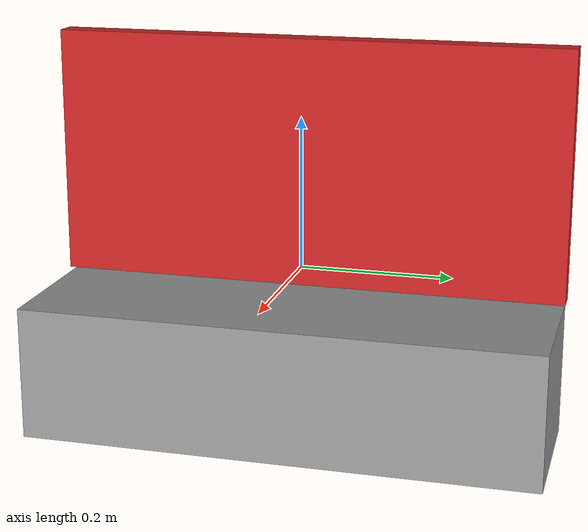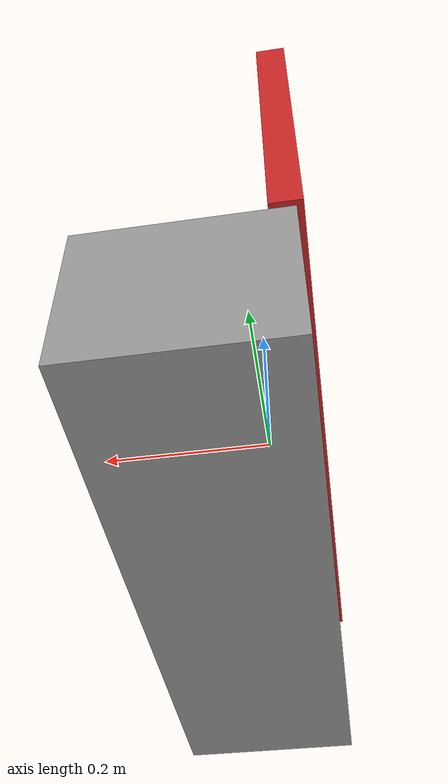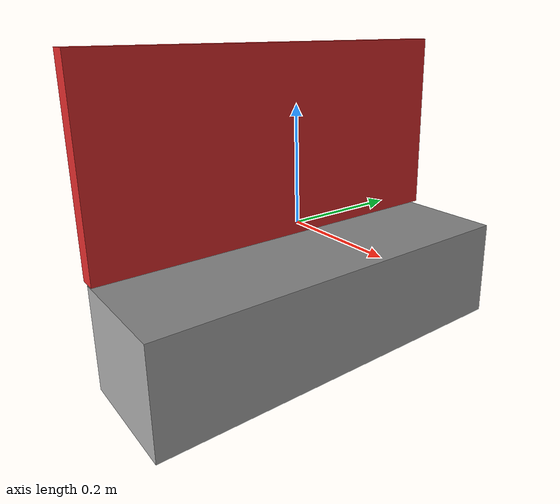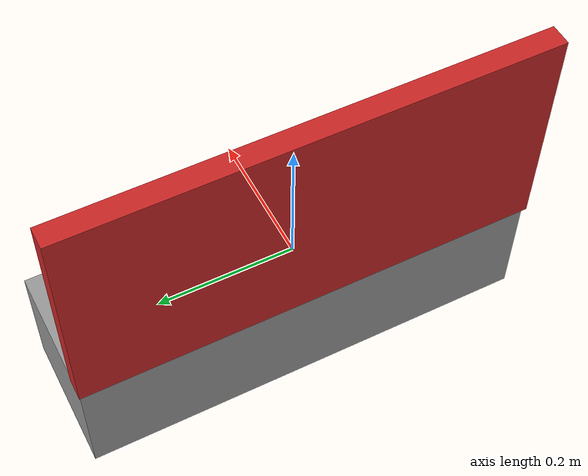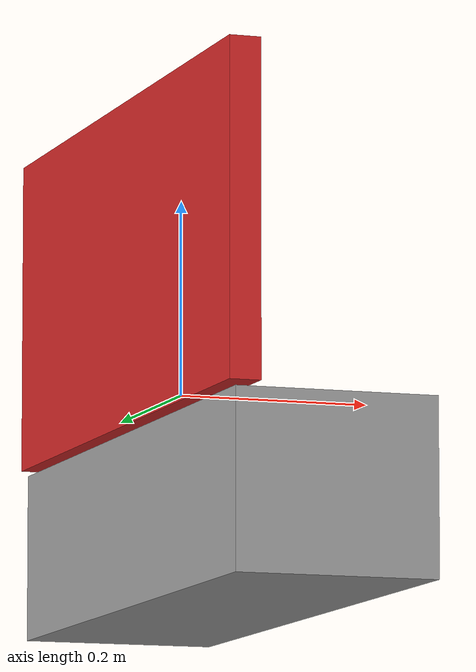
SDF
<?xml version='1.0'?>
<sdf version='1.6'>
  <model name='BoxWithLid'>
    <link name='box_link'>
      <pose frame=''>0.043311 0.0 -0.129787 0 -0 0</pose>
      <inertial>
        <mass>0.0247162</mass>
        <inertia>
          <ixx>0.00102029</ixx>
          <ixy>0</ixy>
          <ixz>0</ixz>
          <iyy>0.00015109</iyy>
          <iyz>0</iyz>
          <izz>0.00104244</izz>
        </inertia>
        <pose frame=''>0 0 0 0 -0 0</pose>
      </inertial>
      <gravity>1</gravity>
      <self_collide>0</self_collide>
      <kinematic>0</kinematic>
      <visual name='visual'>
        <pose frame=''>0 0 0 0 -0 0</pose>
        <geometry>
          <box>
            <size>0.205074 0.681234 0.176881</size>
          </box>
        </geometry>
        <material>
          <lighting>1</lighting>
          <script>
            <uri>file://media/materials/scripts/gazebo.material</uri>
            <name>Gazebo/Grey</name>
          </script>
          <ambient>0.3 0.3 0.3 1</ambient>
          <diffuse>0.7 0.7 0.7 1</diffuse>
          <specular>0.01 0.01 0.01 1</specular>
          <emissive>0 0 0 1</emissive>
          <shader type='vertex'>
            <normal_map>__default__</normal_map>
          </shader>
        </material>
        <cast_shadows>1</cast_shadows>
        <transparency>0</transparency>
      </visual>
      <collision name='collision'>
        <laser_retro>0</laser_retro>
        <max_contacts>10</max_contacts>
        <pose frame=''>0 0 0 0 -0 0</pose>
        <geometry>
          <box>
            <size>0.205074 0.681234 0.176881</size>
          </box>
        </geometry>
        <surface>
          <friction>
            <ode>
              <mu>1</mu>
              <mu2>1</mu2>
              <fdir1>0 0 0</fdir1>
              <slip1>0</slip1>
              <slip2>0</slip2>
            </ode>
            <torsional>
              <coefficient>1</coefficient>
              <patch_radius>0</patch_radius>
              <surface_radius>0</surface_radius>
              <use_patch_radius>1</use_patch_radius>
              <ode>
                <slip>0</slip>
              </ode>
            </torsional>
          </friction>
          <bounce>
            <restitution_coefficient>0</restitution_coefficient>
            <threshold>1e+06</threshold>
          </bounce>
          <contact>
            <collide_without_contact>0</collide_without_contact>
            <collide_without_contact_bitmask>1</collide_without_contact_bitmask>
            <collide_bitmask>1</collide_bitmask>
            <ode>
              <soft_cfm>0</soft_cfm>
              <soft_erp>0.2</soft_erp>
              <kp>1e+13</kp>
              <kd>1</kd>
              <max_vel>0.01</max_vel>
              <min_depth>0</min_depth>
            </ode>
            <bullet>
              <split_impulse>1</split_impulse>
              <split_impulse_penetration_threshold>-0.01</split_impulse_penetration_threshold>
              <soft_cfm>0</soft_cfm>
              <soft_erp>0.2</soft_erp>
              <kp>1e+13</kp>
              <kd>1</kd>
            </bullet>
          </contact>
        </surface>
      </collision>
    </link>
    <link name='lid_link'>
      <pose frame=''>-0.05 0.0 0.129788 0 -0 0</pose>
      <inertial>
        <mass>0.00934106</mass>
        <inertia>
          <ixx>0.00069605</ixx>
          <ixy>0</ixy>
          <ixz>0</ixz>
          <iyy>8.625e-05</iyy>
          <iyz>0</iyz>
          <izz>0.00061138</izz>
        </inertia>
        <pose frame=''>0 0 0 0 -0 0</pose>
      </inertial>
      <gravity>1</gravity>
      <self_collide>0</self_collide>
      <kinematic>0</kinematic>
      <visual name='visual'>
        <pose frame=''>0 0 0 0 -0 0</pose>
        <geometry>
          <box>
            <size>0.031833 0.685593 0.331334</size>
          </box>
        </geometry>
        <material>
          <lighting>1</lighting>
          <script>
            <uri>file://media/materials/scripts/gazebo.material</uri>
            <name>Gazebo/Red</name>
          </script>
          <ambient>0.3 0.3 0.3 1</ambient>
          <diffuse>0.7 0.7 0.7 1</diffuse>
          <specular>0.01 0.01 0.01 1</specular>
          <emissive>0 0 0 1</emissive>
          <shader type='vertex'>
            <normal_map>__default__</normal_map>
          </shader>
        </material>
        <cast_shadows>1</cast_shadows>
        <transparency>0</transparency>
      </visual>
      <collision name='collision'>
        <laser_retro>0</laser_retro>
        <max_contacts>10</max_contacts>
        <pose frame=''>0 0 0 0 -0 0</pose>
        <geometry>
          <box>
            <size>0.031833 0.685593 0.331334</size>
          </box>
        </geometry>
        <surface>
          <friction>
            <ode>
              <mu>1</mu>
              <mu2>1</mu2>
              <fdir1>0 0 0</fdir1>
              <slip1>0</slip1>
              <slip2>0</slip2>
            </ode>
            <torsional>
              <coefficient>1</coefficient>
              <patch_radius>0</patch_radius>
              <surface_radius>0</surface_radius>
              <use_patch_radius>1</use_patch_radius>
              <ode>
                <slip>0</slip>
              </ode>
            </torsional>
          </friction>
          <bounce>
            <restitution_coefficient>0</restitution_coefficient>
            <threshold>1e+06</threshold>
          </bounce>
          <contact>
            <collide_without_contact>0</collide_without_contact>
            <collide_without_contact_bitmask>1</collide_without_contact_bitmask>
            <collide_bitmask>1</collide_bitmask>
            <ode>
              <soft_cfm>0</soft_cfm>
              <soft_erp>0.2</soft_erp>
              <kp>1e+13</kp>
              <kd>1</kd>
              <max_vel>0.01</max_vel>
              <min_depth>0</min_depth>
            </ode>
            <bullet>
              <split_impulse>1</split_impulse>
              <split_impulse_penetration_threshold>-0.01</split_impulse_penetration_threshold>
              <soft_cfm>0</soft_cfm>
              <soft_erp>0.2</soft_erp>
              <kp>1e+13</kp>
              <kd>1</kd>
            </bullet>
          </contact>
        </surface>
      </collision>
    </link>
    <joint name='left_hinge_joint' type='revolute'>
      <parent>box_link</parent>
      <child>lid_link</child>
      <pose frame=''>0 0 -0.16 0 -0 0</pose>
      <axis>
        <xyz>0 1 0</xyz>
        <use_parent_model_frame>0</use_parent_model_frame>
        <limit>
          <lower>0</lower>
          <upper>1.57</upper>
          <effort>-1</effort>
          <velocity>-1</velocity>
        </limit>
        <dynamics>
          <spring_reference>0</spring_reference>
          <spring_stiffness>0</spring_stiffness>
          <damping>0</damping>
          <friction>0</friction>
        </dynamics>
      </axis>
      <physics>
        <ode>
          <limit>
            <cfm>0</cfm>
            <erp>0.2</erp>
          </limit>
          <suspension>
            <cfm>0</cfm>
            <erp>0.2</erp>
          </suspension>
        </ode>
      </physics>
    </joint>
    <static>0</static>
    <allow_auto_disable>1</allow_auto_disable>
  </model>
</sdf>
